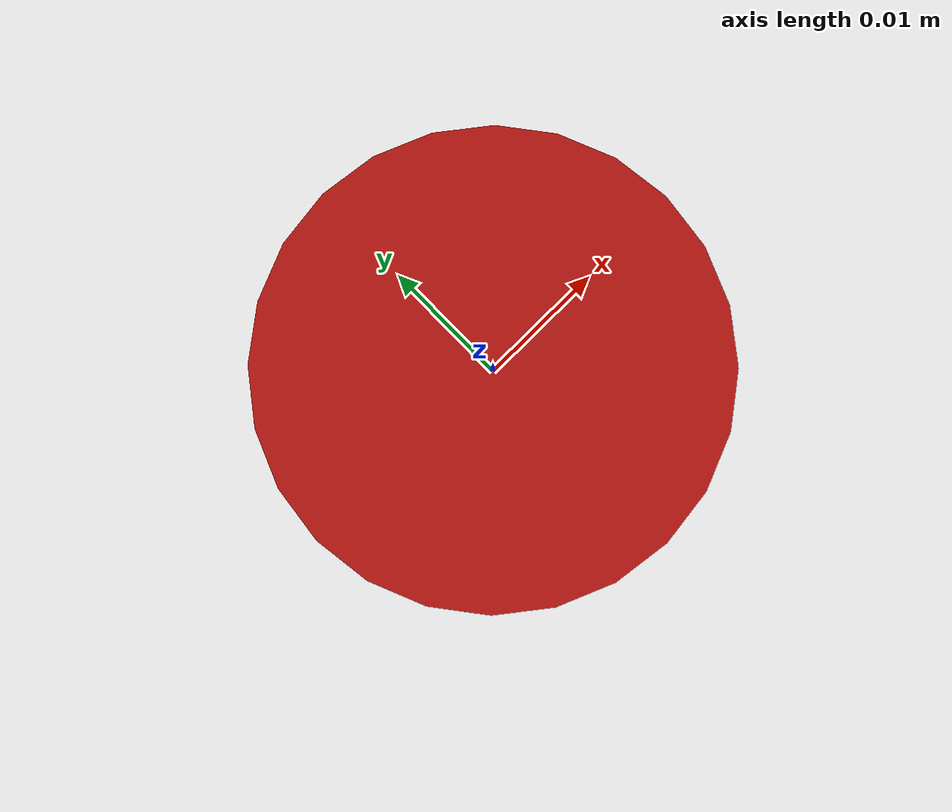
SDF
<?xml version="1.0" ?>
<!-- GENERATED by ros2_ws/src/bartender_gazebo/scripts/make_beer_and_opener.py.
     Edit that script and re-run it; edits here are overwritten. -->
<sdf version="1.9">
  <model name="beer_cap">
    <link name="cap_link">
      <inertial>
        <pose>0 0 0.003250 0 0 0</pose>
        <mass>0.0022</mass>
        <inertia>
          <ixx>0.000000150</ixx>
          <iyy>0.000000150</iyy>
          <izz>0.000000285</izz>
          <ixy>0</ixy><ixz>0</ixz><iyz>0</iyz>
        </inertia>
      </inertial>

      <visual name="cap_visual">
        <pose>0 0 0.003250 0 0 0</pose>
        <geometry><cylinder><radius>0.016100</radius>
          <length>0.006500</length></cylinder></geometry>
        <material>
          <ambient>0.20 0.02 0.02 1</ambient>
          <diffuse>0.70 0.08 0.06 1</diffuse>
          <specular>0.8 0.8 0.8 1</specular>
        </material>
      </visual>

      <collision name="cap_collision">
        <pose>0 0 0.003250 0 0 0</pose>
        <geometry><cylinder><radius>0.016100</radius>
          <length>0.006500</length></cylinder></geometry>
        <surface><friction><ode><mu>0.9</mu><mu2>0.9</mu2></ode></friction></surface>
      </collision>
    </link>
  </model>
</sdf>
